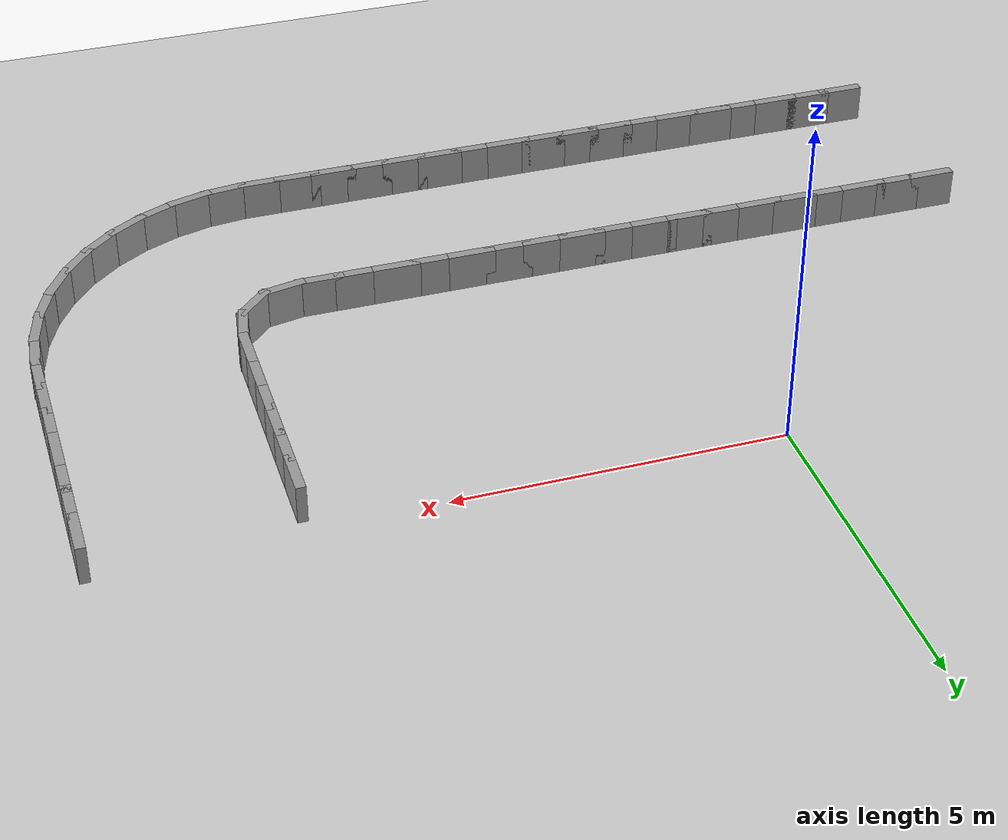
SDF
<sdf version="1.7">
 <world name="default">
  <model name="ground_plane">
   <static>1</static>
   <link name="link">
    <collision name="collision">
     <geometry><plane><normal>0 0 1</normal><size>100 100</size></plane></geometry>
     <surface><friction><ode><mu>100</mu><mu2>50</mu2></ode></friction></surface>
    </collision>
    <visual name="visual">
     <cast_shadows>0</cast_shadows>
     <geometry><plane><normal>0 0 1</normal><size>100 100</size></plane></geometry>
     <material>
      <script><uri>file://media/materials/scripts/gazebo.material</uri><name>Gazebo/Grey</name></script>
     </material>
    </visual>
   </link>
  </model>
  <model name="parking_lot_loop">
   <link name="Wall_43">
    <collision name="Wall_43_Collision">
     <geometry><box><size>0.7500 0.1500 0.6000</size></box></geometry>
     <pose>0 0 0.3000 0 -0 0</pose>
    </collision>
    <visual name="Wall_43_Visual">
     <pose>0 0 0.3000 0 -0 0</pose>
     <geometry><box><size>0.7500 0.1500 0.6000</size></box></geometry>
     <material>
      <script><uri>file://media/materials/scripts/gazebo.material</uri><name>Gazebo/Grey</name></script>
      <ambient>1 1 1 1</ambient>
     </material>
    </visual>
    <pose>-4.6124 -5.0000 0 0 -0 0.00000</pose>
   </link>
   <link name="Wall_44">
    <collision name="Wall_44_Collision">
     <geometry><box><size>0.7500 0.1500 0.6000</size></box></geometry>
     <pose>0 0 0.3000 0 -0 0</pose>
    </collision>
    <visual name="Wall_44_Visual">
     <pose>0 0 0.3000 0 -0 0</pose>
     <geometry><box><size>0.7500 0.1500 0.6000</size></box></geometry>
     <material>
      <script><uri>file://media/materials/scripts/gazebo.material</uri><name>Gazebo/Grey</name></script>
      <ambient>1 1 1 1</ambient>
     </material>
    </visual>
    <pose>-4.0124 -5.0000 0 0 -0 0.00000</pose>
   </link>
   <link name="Wall_45">
    <collision name="Wall_45_Collision">
     <geometry><box><size>0.7500 0.1500 0.6000</size></box></geometry>
     <pose>0 0 0.3000 0 -0 0</pose>
    </collision>
    <visual name="Wall_45_Visual">
     <pose>0 0 0.3000 0 -0 0</pose>
     <geometry><box><size>0.7500 0.1500 0.6000</size></box></geometry>
     <material>
      <script><uri>file://media/materials/scripts/gazebo.material</uri><name>Gazebo/Grey</name></script>
      <ambient>1 1 1 1</ambient>
     </material>
    </visual>
    <pose>-3.4124 -5.0000 0 0 -0 0.00000</pose>
   </link>
   <link name="Wall_46">
    <collision name="Wall_46_Collision">
     <geometry><box><size>0.7500 0.1500 0.6000</size></box></geometry>
     <pose>0 0 0.3000 0 -0 0</pose>
    </collision>
    <visual name="Wall_46_Visual">
     <pose>0 0 0.3000 0 -0 0</pose>
     <geometry><box><size>0.7500 0.1500 0.6000</size></box></geometry>
     <material>
      <script><uri>file://media/materials/scripts/gazebo.material</uri><name>Gazebo/Grey</name></script>
      <ambient>1 1 1 1</ambient>
     </material>
    </visual>
    <pose>-2.8124 -5.0000 0 0 -0 0.00000</pose>
   </link>
   <link name="Wall_47">
    <collision name="Wall_47_Collision">
     <geometry><box><size>0.7500 0.1500 0.6000</size></box></geometry>
     <pose>0 0 0.3000 0 -0 0</pose>
    </collision>
    <visual name="Wall_47_Visual">
     <pose>0 0 0.3000 0 -0 0</pose>
     <geometry><box><size>0.7500 0.1500 0.6000</size></box></geometry>
     <material>
      <script><uri>file://media/materials/scripts/gazebo.material</uri><name>Gazebo/Grey</name></script>
      <ambient>1 1 1 1</ambient>
     </material>
    </visual>
    <pose>-2.2124 -5.0000 0 0 -0 0.00000</pose>
   </link>
   <link name="Wall_48">
    <collision name="Wall_48_Collision">
     <geometry><box><size>0.7500 0.1500 0.6000</size></box></geometry>
     <pose>0 0 0.3000 0 -0 0</pose>
    </collision>
    <visual name="Wall_48_Visual">
     <pose>0 0 0.3000 0 -0 0</pose>
     <geometry><box><size>0.7500 0.1500 0.6000</size></box></geometry>
     <material>
      <script><uri>file://media/materials/scripts/gazebo.material</uri><name>Gazebo/Grey</name></script>
      <ambient>1 1 1 1</ambient>
     </material>
    </visual>
    <pose>-1.6124 -5.0000 0 0 -0 0.00000</pose>
   </link>
   <link name="Wall_49">
    <collision name="Wall_49_Collision">
     <geometry><box><size>0.7500 0.1500 0.6000</size></box></geometry>
     <pose>0 0 0.3000 0 -0 0</pose>
    </collision>
    <visual name="Wall_49_Visual">
     <pose>0 0 0.3000 0 -0 0</pose>
     <geometry><box><size>0.7500 0.1500 0.6000</size></box></geometry>
     <material>
      <script><uri>file://media/materials/scripts/gazebo.material</uri><name>Gazebo/Grey</name></script>
      <ambient>1 1 1 1</ambient>
     </material>
    </visual>
    <pose>-1.0124 -5.0000 0 0 -0 0.00000</pose>
   </link>
   <link name="Wall_50">
    <collision name="Wall_50_Collision">
     <geometry><box><size>0.7500 0.1500 0.6000</size></box></geometry>
     <pose>0 0 0.3000 0 -0 0</pose>
    </collision>
    <visual name="Wall_50_Visual">
     <pose>0 0 0.3000 0 -0 0</pose>
     <geometry><box><size>0.7500 0.1500 0.6000</size></box></geometry>
     <material>
      <script><uri>file://media/materials/scripts/gazebo.material</uri><name>Gazebo/Grey</name></script>
      <ambient>1 1 1 1</ambient>
     </material>
    </visual>
    <pose>-0.4124 -5.0000 0 0 -0 0.00000</pose>
   </link>
   <link name="Wall_51">
    <collision name="Wall_51_Collision">
     <geometry><box><size>0.7500 0.1500 0.6000</size></box></geometry>
     <pose>0 0 0.3000 0 -0 0</pose>
    </collision>
    <visual name="Wall_51_Visual">
     <pose>0 0 0.3000 0 -0 0</pose>
     <geometry><box><size>0.7500 0.1500 0.6000</size></box></geometry>
     <material>
      <script><uri>file://media/materials/scripts/gazebo.material</uri><name>Gazebo/Grey</name></script>
      <ambient>1 1 1 1</ambient>
     </material>
    </visual>
    <pose>0.1876 -5.0000 0 0 -0 0.00000</pose>
   </link>
   <link name="Wall_52">
    <collision name="Wall_52_Collision">
     <geometry><box><size>0.7500 0.1500 0.6000</size></box></geometry>
     <pose>0 0 0.3000 0 -0 0</pose>
    </collision>
    <visual name="Wall_52_Visual">
     <pose>0 0 0.3000 0 -0 0</pose>
     <geometry><box><size>0.7500 0.1500 0.6000</size></box></geometry>
     <material>
      <script><uri>file://media/materials/scripts/gazebo.material</uri><name>Gazebo/Grey</name></script>
      <ambient>1 1 1 1</ambient>
     </material>
    </visual>
    <pose>0.7876 -5.0000 0 0 -0 0.00000</pose>
   </link>
   <link name="Wall_53">
    <collision name="Wall_53_Collision">
     <geometry><box><size>0.7500 0.1500 0.6000</size></box></geometry>
     <pose>0 0 0.3000 0 -0 0</pose>
    </collision>
    <visual name="Wall_53_Visual">
     <pose>0 0 0.3000 0 -0 0</pose>
     <geometry><box><size>0.7500 0.1500 0.6000</size></box></geometry>
     <material>
      <script><uri>file://media/materials/scripts/gazebo.material</uri><name>Gazebo/Grey</name></script>
      <ambient>1 1 1 1</ambient>
     </material>
    </visual>
    <pose>1.3876 -5.0000 0 0 -0 0.00000</pose>
   </link>
   <link name="Wall_54">
    <collision name="Wall_54_Collision">
     <geometry><box><size>0.7500 0.1500 0.6000</size></box></geometry>
     <pose>0 0 0.3000 0 -0 0</pose>
    </collision>
    <visual name="Wall_54_Visual">
     <pose>0 0 0.3000 0 -0 0</pose>
     <geometry><box><size>0.7500 0.1500 0.6000</size></box></geometry>
     <material>
      <script><uri>file://media/materials/scripts/gazebo.material</uri><name>Gazebo/Grey</name></script>
      <ambient>1 1 1 1</ambient>
     </material>
    </visual>
    <pose>1.9876 -5.0000 0 0 -0 0.00000</pose>
   </link>
   <link name="Wall_55">
    <collision name="Wall_55_Collision">
     <geometry><box><size>0.7500 0.1500 0.6000</size></box></geometry>
     <pose>0 0 0.3000 0 -0 0</pose>
    </collision>
    <visual name="Wall_55_Visual">
     <pose>0 0 0.3000 0 -0 0</pose>
     <geometry><box><size>0.7500 0.1500 0.6000</size></box></geometry>
     <material>
      <script><uri>file://media/materials/scripts/gazebo.material</uri><name>Gazebo/Grey</name></script>
      <ambient>1 1 1 1</ambient>
     </material>
    </visual>
    <pose>2.5876 -5.0000 0 0 -0 0.00000</pose>
   </link>
   <link name="Wall_56">
    <collision name="Wall_56_Collision">
     <geometry><box><size>0.7500 0.1500 0.6000</size></box></geometry>
     <pose>0 0 0.3000 0 -0 0</pose>
    </collision>
    <visual name="Wall_56_Visual">
     <pose>0 0 0.3000 0 -0 0</pose>
     <geometry><box><size>0.7500 0.1500 0.6000</size></box></geometry>
     <material>
      <script><uri>file://media/materials/scripts/gazebo.material</uri><name>Gazebo/Grey</name></script>
      <ambient>1 1 1 1</ambient>
     </material>
    </visual>
    <pose>3.1876 -5.0000 0 0 -0 0.00000</pose>
   </link>
   <link name="Wall_57">
    <collision name="Wall_57_Collision">
     <geometry><box><size>0.7500 0.1500 0.6000</size></box></geometry>
     <pose>0 0 0.3000 0 -0 0</pose>
    </collision>
    <visual name="Wall_57_Visual">
     <pose>0 0 0.3000 0 -0 0</pose>
     <geometry><box><size>0.7500 0.1500 0.6000</size></box></geometry>
     <material>
      <script><uri>file://media/materials/scripts/gazebo.material</uri><name>Gazebo/Grey</name></script>
      <ambient>1 1 1 1</ambient>
     </material>
    </visual>
    <pose>3.7876 -5.0000 0 0 -0 0.00000</pose>
   </link>
   <link name="Wall_58">
    <collision name="Wall_58_Collision">
     <geometry><box><size>0.7500 0.1500 0.6000</size></box></geometry>
     <pose>0 0 0.3000 0 -0 0</pose>
    </collision>
    <visual name="Wall_58_Visual">
     <pose>0 0 0.3000 0 -0 0</pose>
     <geometry><box><size>0.7500 0.1500 0.6000</size></box></geometry>
     <material>
      <script><uri>file://media/materials/scripts/gazebo.material</uri><name>Gazebo/Grey</name></script>
      <ambient>1 1 1 1</ambient>
     </material>
    </visual>
    <pose>4.3876 -5.0000 0 0 -0 0.00000</pose>
   </link>
   <link name="Wall_59">
    <collision name="Wall_59_Collision">
     <geometry><box><size>0.7500 0.1500 0.6000</size></box></geometry>
     <pose>0 0 0.3000 0 -0 0</pose>
    </collision>
    <visual name="Wall_59_Visual">
     <pose>0 0 0.3000 0 -0 0</pose>
     <geometry><box><size>0.7500 0.1500 0.6000</size></box></geometry>
     <material>
      <script><uri>file://media/materials/scripts/gazebo.material</uri><name>Gazebo/Grey</name></script>
      <ambient>1 1 1 1</ambient>
     </material>
    </visual>
    <pose>4.9876 -5.0000 0 0 -0 0.00000</pose>
   </link>
   <link name="Wall_60">
    <collision name="Wall_60_Collision">
     <geometry><box><size>0.7500 0.1500 0.6000</size></box></geometry>
     <pose>0 0 0.3000 0 -0 0</pose>
    </collision>
    <visual name="Wall_60_Visual">
     <pose>0 0 0.3000 0 -0 0</pose>
     <geometry><box><size>0.7500 0.1500 0.6000</size></box></geometry>
     <material>
      <script><uri>file://media/materials/scripts/gazebo.material</uri><name>Gazebo/Grey</name></script>
      <ambient>1 1 1 1</ambient>
     </material>
    </visual>
    <pose>5.5876 -5.0000 0 0 -0 0.00000</pose>
   </link>
   <link name="Wall_61">
    <collision name="Wall_61_Collision">
     <geometry><box><size>0.7425 0.1500 0.6000</size></box></geometry>
     <pose>0 0 0.3000 0 -0 0</pose>
    </collision>
    <visual name="Wall_61_Visual">
     <pose>0 0 0.3000 0 -0 0</pose>
     <geometry><box><size>0.7425 0.1500 0.6000</size></box></geometry>
     <material>
      <script><uri>file://media/materials/scripts/gazebo.material</uri><name>Gazebo/Grey</name></script>
      <ambient>1 1 1 1</ambient>
     </material>
    </visual>
    <pose>6.1781 -4.9417 0 0 -0 0.19800</pose>
   </link>
   <link name="Wall_62">
    <collision name="Wall_62_Collision">
     <geometry><box><size>0.7410 0.1500 0.6000</size></box></geometry>
     <pose>0 0 0.3000 0 -0 0</pose>
    </collision>
    <visual name="Wall_62_Visual">
     <pose>0 0 0.3000 0 -0 0</pose>
     <geometry><box><size>0.7410 0.1500 0.6000</size></box></geometry>
     <material>
      <script><uri>file://media/materials/scripts/gazebo.material</uri><name>Gazebo/Grey</name></script>
      <ambient>1 1 1 1</ambient>
     </material>
    </visual>
    <pose>6.6770 -4.6740 0 0 -0 0.78761</pose>
   </link>
   <link name="Wall_63">
    <collision name="Wall_63_Collision">
     <geometry><box><size>0.7426 0.1500 0.6000</size></box></geometry>
     <pose>0 0 0.3000 0 -0 0</pose>
    </collision>
    <visual name="Wall_63_Visual">
     <pose>0 0 0.3000 0 -0 0</pose>
     <geometry><box><size>0.7426 0.1500 0.6000</size></box></geometry>
     <material>
      <script><uri>file://media/materials/scripts/gazebo.material</uri><name>Gazebo/Grey</name></script>
      <ambient>1 1 1 1</ambient>
     </material>
    </visual>
    <pose>6.9428 -4.1739 0 0 -0 1.37638</pose>
   </link>
   <link name="Wall_64">
    <collision name="Wall_64_Collision">
     <geometry><box><size>0.7500 0.1500 0.6000</size></box></geometry>
     <pose>0 0 0.3000 0 -0 0</pose>
    </collision>
    <visual name="Wall_64_Visual">
     <pose>0 0 0.3000 0 -0 0</pose>
     <geometry><box><size>0.7500 0.1500 0.6000</size></box></geometry>
     <material>
      <script><uri>file://media/materials/scripts/gazebo.material</uri><name>Gazebo/Grey</name></script>
      <ambient>1 1 1 1</ambient>
     </material>
    </visual>
    <pose>7.0000 -3.5832 0 0 -0 1.57080</pose>
   </link>
   <link name="Wall_65">
    <collision name="Wall_65_Collision">
     <geometry><box><size>0.7500 0.1500 0.6000</size></box></geometry>
     <pose>0 0 0.3000 0 -0 0</pose>
    </collision>
    <visual name="Wall_65_Visual">
     <pose>0 0 0.3000 0 -0 0</pose>
     <geometry><box><size>0.7500 0.1500 0.6000</size></box></geometry>
     <material>
      <script><uri>file://media/materials/scripts/gazebo.material</uri><name>Gazebo/Grey</name></script>
      <ambient>1 1 1 1</ambient>
     </material>
    </visual>
    <pose>7.0000 -2.9832 0 0 -0 1.57080</pose>
   </link>
   <link name="Wall_66">
    <collision name="Wall_66_Collision">
     <geometry><box><size>0.7500 0.1500 0.6000</size></box></geometry>
     <pose>0 0 0.3000 0 -0 0</pose>
    </collision>
    <visual name="Wall_66_Visual">
     <pose>0 0 0.3000 0 -0 0</pose>
     <geometry><box><size>0.7500 0.1500 0.6000</size></box></geometry>
     <material>
      <script><uri>file://media/materials/scripts/gazebo.material</uri><name>Gazebo/Grey</name></script>
      <ambient>1 1 1 1</ambient>
     </material>
    </visual>
    <pose>7.0000 -2.3832 0 0 -0 1.57080</pose>
   </link>
   <link name="Wall_67">
    <collision name="Wall_67_Collision">
     <geometry><box><size>0.7500 0.1500 0.6000</size></box></geometry>
     <pose>0 0 0.3000 0 -0 0</pose>
    </collision>
    <visual name="Wall_67_Visual">
     <pose>0 0 0.3000 0 -0 0</pose>
     <geometry><box><size>0.7500 0.1500 0.6000</size></box></geometry>
     <material>
      <script><uri>file://media/materials/scripts/gazebo.material</uri><name>Gazebo/Grey</name></script>
      <ambient>1 1 1 1</ambient>
     </material>
    </visual>
    <pose>7.0000 -1.7832 0 0 -0 1.57080</pose>
   </link>
   <link name="Wall_68">
    <collision name="Wall_68_Collision">
     <geometry><box><size>0.7500 0.1500 0.6000</size></box></geometry>
     <pose>0 0 0.3000 0 -0 0</pose>
    </collision>
    <visual name="Wall_68_Visual">
     <pose>0 0 0.3000 0 -0 0</pose>
     <geometry><box><size>0.7500 0.1500 0.6000</size></box></geometry>
     <material>
      <script><uri>file://media/materials/scripts/gazebo.material</uri><name>Gazebo/Grey</name></script>
      <ambient>1 1 1 1</ambient>
     </material>
    </visual>
    <pose>7.0000 -1.1832 0 0 -0 1.57080</pose>
   </link>
   <link name="Wall_69">
    <collision name="Wall_69_Collision">
     <geometry><box><size>0.7500 0.1500 0.6000</size></box></geometry>
     <pose>0 0 0.3000 0 -0 0</pose>
    </collision>
    <visual name="Wall_69_Visual">
     <pose>0 0 0.3000 0 -0 0</pose>
     <geometry><box><size>0.7500 0.1500 0.6000</size></box></geometry>
     <material>
      <script><uri>file://media/materials/scripts/gazebo.material</uri><name>Gazebo/Grey</name></script>
      <ambient>1 1 1 1</ambient>
     </material>
    </visual>
    <pose>7.0000 -0.5832 0 0 -0 1.57080</pose>
   </link>
   <link name="Wall_144">
    <collision name="Wall_144_Collision">
     <geometry><box><size>0.7500 0.1500 0.6000</size></box></geometry>
     <pose>0 0 0.3000 0 -0 0</pose>
    </collision>
    <visual name="Wall_144_Visual">
     <pose>0 0 0.3000 0 -0 0</pose>
     <geometry><box><size>0.7500 0.1500 0.6000</size></box></geometry>
     <material>
      <script><uri>file://media/materials/scripts/gazebo.material</uri><name>Gazebo/Grey</name></script>
      <ambient>1 1 1 1</ambient>
     </material>
    </visual>
    <pose>-4.3495 -8.0000 0 0 -0 0.00000</pose>
   </link>
   <link name="Wall_145">
    <collision name="Wall_145_Collision">
     <geometry><box><size>0.7500 0.1500 0.6000</size></box></geometry>
     <pose>0 0 0.3000 0 -0 0</pose>
    </collision>
    <visual name="Wall_145_Visual">
     <pose>0 0 0.3000 0 -0 0</pose>
     <geometry><box><size>0.7500 0.1500 0.6000</size></box></geometry>
     <material>
      <script><uri>file://media/materials/scripts/gazebo.material</uri><name>Gazebo/Grey</name></script>
      <ambient>1 1 1 1</ambient>
     </material>
    </visual>
    <pose>-3.7495 -8.0000 0 0 -0 0.00000</pose>
   </link>
   <link name="Wall_146">
    <collision name="Wall_146_Collision">
     <geometry><box><size>0.7500 0.1500 0.6000</size></box></geometry>
     <pose>0 0 0.3000 0 -0 0</pose>
    </collision>
    <visual name="Wall_146_Visual">
     <pose>0 0 0.3000 0 -0 0</pose>
     <geometry><box><size>0.7500 0.1500 0.6000</size></box></geometry>
     <material>
      <script><uri>file://media/materials/scripts/gazebo.material</uri><name>Gazebo/Grey</name></script>
      <ambient>1 1 1 1</ambient>
     </material>
    </visual>
    <pose>-3.1495 -8.0000 0 0 -0 0.00000</pose>
   </link>
   <link name="Wall_147">
    <collision name="Wall_147_Collision">
     <geometry><box><size>0.7500 0.1500 0.6000</size></box></geometry>
     <pose>0 0 0.3000 0 -0 0</pose>
    </collision>
    <visual name="Wall_147_Visual">
     <pose>0 0 0.3000 0 -0 0</pose>
     <geometry><box><size>0.7500 0.1500 0.6000</size></box></geometry>
     <material>
      <script><uri>file://media/materials/scripts/gazebo.material</uri><name>Gazebo/Grey</name></script>
      <ambient>1 1 1 1</ambient>
     </material>
    </visual>
    <pose>-2.5495 -8.0000 0 0 -0 0.00000</pose>
   </link>
   <link name="Wall_148">
    <collision name="Wall_148_Collision">
     <geometry><box><size>0.7500 0.1500 0.6000</size></box></geometry>
     <pose>0 0 0.3000 0 -0 0</pose>
    </collision>
    <visual name="Wall_148_Visual">
     <pose>0 0 0.3000 0 -0 0</pose>
     <geometry><box><size>0.7500 0.1500 0.6000</size></box></geometry>
     <material>
      <script><uri>file://media/materials/scripts/gazebo.material</uri><name>Gazebo/Grey</name></script>
      <ambient>1 1 1 1</ambient>
     </material>
    </visual>
    <pose>-1.9495 -8.0000 0 0 -0 0.00000</pose>
   </link>
   <link name="Wall_149">
    <collision name="Wall_149_Collision">
     <geometry><box><size>0.7500 0.1500 0.6000</size></box></geometry>
     <pose>0 0 0.3000 0 -0 0</pose>
    </collision>
    <visual name="Wall_149_Visual">
     <pose>0 0 0.3000 0 -0 0</pose>
     <geometry><box><size>0.7500 0.1500 0.6000</size></box></geometry>
     <material>
      <script><uri>file://media/materials/scripts/gazebo.material</uri><name>Gazebo/Grey</name></script>
      <ambient>1 1 1 1</ambient>
     </material>
    </visual>
    <pose>-1.3495 -8.0000 0 0 -0 0.00000</pose>
   </link>
   <link name="Wall_150">
    <collision name="Wall_150_Collision">
     <geometry><box><size>0.7500 0.1500 0.6000</size></box></geometry>
     <pose>0 0 0.3000 0 -0 0</pose>
    </collision>
    <visual name="Wall_150_Visual">
     <pose>0 0 0.3000 0 -0 0</pose>
     <geometry><box><size>0.7500 0.1500 0.6000</size></box></geometry>
     <material>
      <script><uri>file://media/materials/scripts/gazebo.material</uri><name>Gazebo/Grey</name></script>
      <ambient>1 1 1 1</ambient>
     </material>
    </visual>
    <pose>-0.7495 -8.0000 0 0 -0 0.00000</pose>
   </link>
   <link name="Wall_151">
    <collision name="Wall_151_Collision">
     <geometry><box><size>0.7500 0.1500 0.6000</size></box></geometry>
     <pose>0 0 0.3000 0 -0 0</pose>
    </collision>
    <visual name="Wall_151_Visual">
     <pose>0 0 0.3000 0 -0 0</pose>
     <geometry><box><size>0.7500 0.1500 0.6000</size></box></geometry>
     <material>
      <script><uri>file://media/materials/scripts/gazebo.material</uri><name>Gazebo/Grey</name></script>
      <ambient>1 1 1 1</ambient>
     </material>
    </visual>
    <pose>-0.1495 -8.0000 0 0 -0 0.00000</pose>
   </link>
   <link name="Wall_152">
    <collision name="Wall_152_Collision">
     <geometry><box><size>0.7500 0.1500 0.6000</size></box></geometry>
     <pose>0 0 0.3000 0 -0 0</pose>
    </collision>
    <visual name="Wall_152_Visual">
     <pose>0 0 0.3000 0 -0 0</pose>
     <geometry><box><size>0.7500 0.1500 0.6000</size></box></geometry>
     <material>
      <script><uri>file://media/materials/scripts/gazebo.material</uri><name>Gazebo/Grey</name></script>
      <ambient>1 1 1 1</ambient>
     </material>
    </visual>
    <pose>0.4505 -8.0000 0 0 -0 0.00000</pose>
   </link>
   <link name="Wall_153">
    <collision name="Wall_153_Collision">
     <geometry><box><size>0.7500 0.1500 0.6000</size></box></geometry>
     <pose>0 0 0.3000 0 -0 0</pose>
    </collision>
    <visual name="Wall_153_Visual">
     <pose>0 0 0.3000 0 -0 0</pose>
     <geometry><box><size>0.7500 0.1500 0.6000</size></box></geometry>
     <material>
      <script><uri>file://media/materials/scripts/gazebo.material</uri><name>Gazebo/Grey</name></script>
      <ambient>1 1 1 1</ambient>
     </material>
    </visual>
    <pose>1.0505 -8.0000 0 0 -0 0.00000</pose>
   </link>
   <link name="Wall_154">
    <collision name="Wall_154_Collision">
     <geometry><box><size>0.7500 0.1500 0.6000</size></box></geometry>
     <pose>0 0 0.3000 0 -0 0</pose>
    </collision>
    <visual name="Wall_154_Visual">
     <pose>0 0 0.3000 0 -0 0</pose>
     <geometry><box><size>0.7500 0.1500 0.6000</size></box></geometry>
     <material>
      <script><uri>file://media/materials/scripts/gazebo.material</uri><name>Gazebo/Grey</name></script>
      <ambient>1 1 1 1</ambient>
     </material>
    </visual>
    <pose>1.6505 -8.0000 0 0 -0 0.00000</pose>
   </link>
   <link name="Wall_155">
    <collision name="Wall_155_Collision">
     <geometry><box><size>0.7500 0.1500 0.6000</size></box></geometry>
     <pose>0 0 0.3000 0 -0 0</pose>
    </collision>
    <visual name="Wall_155_Visual">
     <pose>0 0 0.3000 0 -0 0</pose>
     <geometry><box><size>0.7500 0.1500 0.6000</size></box></geometry>
     <material>
      <script><uri>file://media/materials/scripts/gazebo.material</uri><name>Gazebo/Grey</name></script>
      <ambient>1 1 1 1</ambient>
     </material>
    </visual>
    <pose>2.2505 -8.0000 0 0 -0 0.00000</pose>
   </link>
   <link name="Wall_156">
    <collision name="Wall_156_Collision">
     <geometry><box><size>0.7500 0.1500 0.6000</size></box></geometry>
     <pose>0 0 0.3000 0 -0 0</pose>
    </collision>
    <visual name="Wall_156_Visual">
     <pose>0 0 0.3000 0 -0 0</pose>
     <geometry><box><size>0.7500 0.1500 0.6000</size></box></geometry>
     <material>
      <script><uri>file://media/materials/scripts/gazebo.material</uri><name>Gazebo/Grey</name></script>
      <ambient>1 1 1 1</ambient>
     </material>
    </visual>
    <pose>2.8505 -8.0000 0 0 -0 0.00000</pose>
   </link>
   <link name="Wall_157">
    <collision name="Wall_157_Collision">
     <geometry><box><size>0.7500 0.1500 0.6000</size></box></geometry>
     <pose>0 0 0.3000 0 -0 0</pose>
    </collision>
    <visual name="Wall_157_Visual">
     <pose>0 0 0.3000 0 -0 0</pose>
     <geometry><box><size>0.7500 0.1500 0.6000</size></box></geometry>
     <material>
      <script><uri>file://media/materials/scripts/gazebo.material</uri><name>Gazebo/Grey</name></script>
      <ambient>1 1 1 1</ambient>
     </material>
    </visual>
    <pose>3.4505 -8.0000 0 0 -0 0.00000</pose>
   </link>
   <link name="Wall_158">
    <collision name="Wall_158_Collision">
     <geometry><box><size>0.7500 0.1500 0.6000</size></box></geometry>
     <pose>0 0 0.3000 0 -0 0</pose>
    </collision>
    <visual name="Wall_158_Visual">
     <pose>0 0 0.3000 0 -0 0</pose>
     <geometry><box><size>0.7500 0.1500 0.6000</size></box></geometry>
     <material>
      <script><uri>file://media/materials/scripts/gazebo.material</uri><name>Gazebo/Grey</name></script>
      <ambient>1 1 1 1</ambient>
     </material>
    </visual>
    <pose>4.0505 -8.0000 0 0 -0 0.00000</pose>
   </link>
   <link name="Wall_159">
    <collision name="Wall_159_Collision">
     <geometry><box><size>0.7500 0.1500 0.6000</size></box></geometry>
     <pose>0 0 0.3000 0 -0 0</pose>
    </collision>
    <visual name="Wall_159_Visual">
     <pose>0 0 0.3000 0 -0 0</pose>
     <geometry><box><size>0.7500 0.1500 0.6000</size></box></geometry>
     <material>
      <script><uri>file://media/materials/scripts/gazebo.material</uri><name>Gazebo/Grey</name></script>
      <ambient>1 1 1 1</ambient>
     </material>
    </visual>
    <pose>4.6505 -8.0000 0 0 -0 0.00000</pose>
   </link>
   <link name="Wall_160">
    <collision name="Wall_160_Collision">
     <geometry><box><size>0.7500 0.1500 0.6000</size></box></geometry>
     <pose>0 0 0.3000 0 -0 0</pose>
    </collision>
    <visual name="Wall_160_Visual">
     <pose>0 0 0.3000 0 -0 0</pose>
     <geometry><box><size>0.7500 0.1500 0.6000</size></box></geometry>
     <material>
      <script><uri>file://media/materials/scripts/gazebo.material</uri><name>Gazebo/Grey</name></script>
      <ambient>1 1 1 1</ambient>
     </material>
    </visual>
    <pose>5.2505 -8.0000 0 0 -0 0.00000</pose>
   </link>
   <link name="Wall_161">
    <collision name="Wall_161_Collision">
     <geometry><box><size>0.7500 0.1500 0.6000</size></box></geometry>
     <pose>0 0 0.3000 0 -0 0</pose>
    </collision>
    <visual name="Wall_161_Visual">
     <pose>0 0 0.3000 0 -0 0</pose>
     <geometry><box><size>0.7500 0.1500 0.6000</size></box></geometry>
     <material>
      <script><uri>file://media/materials/scripts/gazebo.material</uri><name>Gazebo/Grey</name></script>
      <ambient>1 1 1 1</ambient>
     </material>
    </visual>
    <pose>5.8504 -7.9986 0 0 -0 0.00473</pose>
   </link>
   <link name="Wall_162">
    <collision name="Wall_162_Collision">
     <geometry><box><size>0.7494 0.1500 0.6000</size></box></geometry>
     <pose>0 0 0.3000 0 -0 0</pose>
    </collision>
    <visual name="Wall_162_Visual">
     <pose>0 0 0.3000 0 -0 0</pose>
     <geometry><box><size>0.7494 0.1500 0.6000</size></box></geometry>
     <material>
      <script><uri>file://media/materials/scripts/gazebo.material</uri><name>Gazebo/Grey</name></script>
      <ambient>1 1 1 1</ambient>
     </material>
    </visual>
    <pose>6.4482 -7.9635 0 0 -0 0.11262</pose>
   </link>
   <link name="Wall_163">
    <collision name="Wall_163_Collision">
     <geometry><box><size>0.7494 0.1500 0.6000</size></box></geometry>
     <pose>0 0 0.3000 0 -0 0</pose>
    </collision>
    <visual name="Wall_163_Visual">
     <pose>0 0 0.3000 0 -0 0</pose>
     <geometry><box><size>0.7494 0.1500 0.6000</size></box></geometry>
     <material>
      <script><uri>file://media/materials/scripts/gazebo.material</uri><name>Gazebo/Grey</name></script>
      <ambient>1 1 1 1</ambient>
     </material>
    </visual>
    <pose>7.0355 -7.8520 0 0 -0 0.26260</pose>
   </link>
   <link name="Wall_164">
    <collision name="Wall_164_Collision">
     <geometry><box><size>0.7494 0.1500 0.6000</size></box></geometry>
     <pose>0 0 0.3000 0 -0 0</pose>
    </collision>
    <visual name="Wall_164_Visual">
     <pose>0 0 0.3000 0 -0 0</pose>
     <geometry><box><size>0.7494 0.1500 0.6000</size></box></geometry>
     <material>
      <script><uri>file://media/materials/scripts/gazebo.material</uri><name>Gazebo/Grey</name></script>
      <ambient>1 1 1 1</ambient>
     </material>
    </visual>
    <pose>7.5995 -7.6540 0 0 -0 0.41263</pose>
   </link>
   <link name="Wall_165">
    <collision name="Wall_165_Collision">
     <geometry><box><size>0.7494 0.1500 0.6000</size></box></geometry>
     <pose>0 0 0.3000 0 -0 0</pose>
    </collision>
    <visual name="Wall_165_Visual">
     <pose>0 0 0.3000 0 -0 0</pose>
     <geometry><box><size>0.7494 0.1500 0.6000</size></box></geometry>
     <material>
      <script><uri>file://media/materials/scripts/gazebo.material</uri><name>Gazebo/Grey</name></script>
      <ambient>1 1 1 1</ambient>
     </material>
    </visual>
    <pose>8.1276 -7.3739 0 0 -0 0.56262</pose>
   </link>
   <link name="Wall_166">
    <collision name="Wall_166_Collision">
     <geometry><box><size>0.7494 0.1500 0.6000</size></box></geometry>
     <pose>0 0 0.3000 0 -0 0</pose>
    </collision>
    <visual name="Wall_166_Visual">
     <pose>0 0 0.3000 0 -0 0</pose>
     <geometry><box><size>0.7494 0.1500 0.6000</size></box></geometry>
     <material>
      <script><uri>file://media/materials/scripts/gazebo.material</uri><name>Gazebo/Grey</name></script>
      <ambient>1 1 1 1</ambient>
     </material>
    </visual>
    <pose>8.6079 -7.0181 0 0 -0 0.71260</pose>
   </link>
   <link name="Wall_167">
    <collision name="Wall_167_Collision">
     <geometry><box><size>0.7494 0.1500 0.6000</size></box></geometry>
     <pose>0 0 0.3000 0 -0 0</pose>
    </collision>
    <visual name="Wall_167_Visual">
     <pose>0 0 0.3000 0 -0 0</pose>
     <geometry><box><size>0.7494 0.1500 0.6000</size></box></geometry>
     <material>
      <script><uri>file://media/materials/scripts/gazebo.material</uri><name>Gazebo/Grey</name></script>
      <ambient>1 1 1 1</ambient>
     </material>
    </visual>
    <pose>9.0296 -6.5945 0 0 -0 0.86263</pose>
   </link>
   <link name="Wall_168">
    <collision name="Wall_168_Collision">
     <geometry><box><size>0.7494 0.1500 0.6000</size></box></geometry>
     <pose>0 0 0.3000 0 -0 0</pose>
    </collision>
    <visual name="Wall_168_Visual">
     <pose>0 0 0.3000 0 -0 0</pose>
     <geometry><box><size>0.7494 0.1500 0.6000</size></box></geometry>
     <material>
      <script><uri>file://media/materials/scripts/gazebo.material</uri><name>Gazebo/Grey</name></script>
      <ambient>1 1 1 1</ambient>
     </material>
    </visual>
    <pose>9.3833 -6.1126 0 0 -0 1.01262</pose>
   </link>
   <link name="Wall_169">
    <collision name="Wall_169_Collision">
     <geometry><box><size>0.7494 0.1500 0.6000</size></box></geometry>
     <pose>0 0 0.3000 0 -0 0</pose>
    </collision>
    <visual name="Wall_169_Visual">
     <pose>0 0 0.3000 0 -0 0</pose>
     <geometry><box><size>0.7494 0.1500 0.6000</size></box></geometry>
     <material>
      <script><uri>file://media/materials/scripts/gazebo.material</uri><name>Gazebo/Grey</name></script>
      <ambient>1 1 1 1</ambient>
     </material>
    </visual>
    <pose>9.6611 -5.5833 0 0 -0 1.16260</pose>
   </link>
   <link name="Wall_170">
    <collision name="Wall_170_Collision">
     <geometry><box><size>0.7494 0.1500 0.6000</size></box></geometry>
     <pose>0 0 0.3000 0 -0 0</pose>
    </collision>
    <visual name="Wall_170_Visual">
     <pose>0 0 0.3000 0 -0 0</pose>
     <geometry><box><size>0.7494 0.1500 0.6000</size></box></geometry>
     <material>
      <script><uri>file://media/materials/scripts/gazebo.material</uri><name>Gazebo/Grey</name></script>
      <ambient>1 1 1 1</ambient>
     </material>
    </visual>
    <pose>9.8565 -5.0184 0 0 -0 1.31263</pose>
   </link>
   <link name="Wall_171">
    <collision name="Wall_171_Collision">
     <geometry><box><size>0.7494 0.1500 0.6000</size></box></geometry>
     <pose>0 0 0.3000 0 -0 0</pose>
    </collision>
    <visual name="Wall_171_Visual">
     <pose>0 0 0.3000 0 -0 0</pose>
     <geometry><box><size>0.7494 0.1500 0.6000</size></box></geometry>
     <material>
      <script><uri>file://media/materials/scripts/gazebo.material</uri><name>Gazebo/Grey</name></script>
      <ambient>1 1 1 1</ambient>
     </material>
    </visual>
    <pose>9.9654 -4.4307 0 0 -0 1.46262</pose>
   </link>
   <link name="Wall_172">
    <collision name="Wall_172_Collision">
     <geometry><box><size>0.7500 0.1500 0.6000</size></box></geometry>
     <pose>0 0 0.3000 0 -0 0</pose>
    </collision>
    <visual name="Wall_172_Visual">
     <pose>0 0 0.3000 0 -0 0</pose>
     <geometry><box><size>0.7500 0.1500 0.6000</size></box></geometry>
     <material>
      <script><uri>file://media/materials/scripts/gazebo.material</uri><name>Gazebo/Grey</name></script>
      <ambient>1 1 1 1</ambient>
     </material>
    </visual>
    <pose>9.9989 -3.8327 0 0 -0 1.56711</pose>
   </link>
   <link name="Wall_173">
    <collision name="Wall_173_Collision">
     <geometry><box><size>0.7500 0.1500 0.6000</size></box></geometry>
     <pose>0 0 0.3000 0 -0 0</pose>
    </collision>
    <visual name="Wall_173_Visual">
     <pose>0 0 0.3000 0 -0 0</pose>
     <geometry><box><size>0.7500 0.1500 0.6000</size></box></geometry>
     <material>
      <script><uri>file://media/materials/scripts/gazebo.material</uri><name>Gazebo/Grey</name></script>
      <ambient>1 1 1 1</ambient>
     </material>
    </visual>
    <pose>10.0000 -3.2327 0 0 -0 1.57080</pose>
   </link>
   <link name="Wall_174">
    <collision name="Wall_174_Collision">
     <geometry><box><size>0.7500 0.1500 0.6000</size></box></geometry>
     <pose>0 0 0.3000 0 -0 0</pose>
    </collision>
    <visual name="Wall_174_Visual">
     <pose>0 0 0.3000 0 -0 0</pose>
     <geometry><box><size>0.7500 0.1500 0.6000</size></box></geometry>
     <material>
      <script><uri>file://media/materials/scripts/gazebo.material</uri><name>Gazebo/Grey</name></script>
      <ambient>1 1 1 1</ambient>
     </material>
    </visual>
    <pose>10.0000 -2.6327 0 0 -0 1.57080</pose>
   </link>
   <link name="Wall_175">
    <collision name="Wall_175_Collision">
     <geometry><box><size>0.7500 0.1500 0.6000</size></box></geometry>
     <pose>0 0 0.3000 0 -0 0</pose>
    </collision>
    <visual name="Wall_175_Visual">
     <pose>0 0 0.3000 0 -0 0</pose>
     <geometry><box><size>0.7500 0.1500 0.6000</size></box></geometry>
     <material>
      <script><uri>file://media/materials/scripts/gazebo.material</uri><name>Gazebo/Grey</name></script>
      <ambient>1 1 1 1</ambient>
     </material>
    </visual>
    <pose>10.0000 -2.0327 0 0 -0 1.57080</pose>
   </link>
   <link name="Wall_176">
    <collision name="Wall_176_Collision">
     <geometry><box><size>0.7500 0.1500 0.6000</size></box></geometry>
     <pose>0 0 0.3000 0 -0 0</pose>
    </collision>
    <visual name="Wall_176_Visual">
     <pose>0 0 0.3000 0 -0 0</pose>
     <geometry><box><size>0.7500 0.1500 0.6000</size></box></geometry>
     <material>
      <script><uri>file://media/materials/scripts/gazebo.material</uri><name>Gazebo/Grey</name></script>
      <ambient>1 1 1 1</ambient>
     </material>
    </visual>
    <pose>10.0000 -1.4327 0 0 -0 1.57080</pose>
   </link>
   <link name="Wall_177">
    <collision name="Wall_177_Collision">
     <geometry><box><size>0.7500 0.1500 0.6000</size></box></geometry>
     <pose>0 0 0.3000 0 -0 0</pose>
    </collision>
    <visual name="Wall_177_Visual">
     <pose>0 0 0.3000 0 -0 0</pose>
     <geometry><box><size>0.7500 0.1500 0.6000</size></box></geometry>
     <material>
      <script><uri>file://media/materials/scripts/gazebo.material</uri><name>Gazebo/Grey</name></script>
      <ambient>1 1 1 1</ambient>
     </material>
    </visual>
    <pose>10.0000 -0.8327 0 0 -0 1.57080</pose>
   </link>
   <link name="Wall_178">
    <collision name="Wall_178_Collision">
     <geometry><box><size>0.7500 0.1500 0.6000</size></box></geometry>
     <pose>0 0 0.3000 0 -0 0</pose>
    </collision>
    <visual name="Wall_178_Visual">
     <pose>0 0 0.3000 0 -0 0</pose>
     <geometry><box><size>0.7500 0.1500 0.6000</size></box></geometry>
     <material>
      <script><uri>file://media/materials/scripts/gazebo.material</uri><name>Gazebo/Grey</name></script>
      <ambient>1 1 1 1</ambient>
     </material>
    </visual>
    <pose>10.0000 -0.2327 0 0 -0 1.57080</pose>
   </link>
   <static>1</static>
  </model>
 </world>
</sdf>
